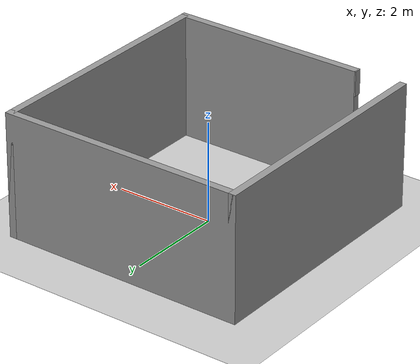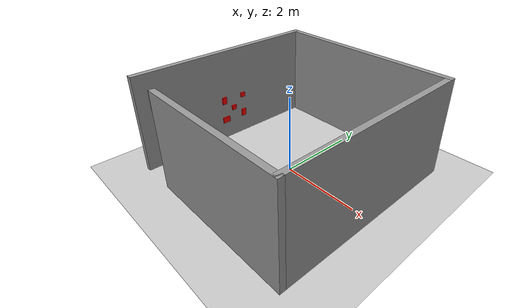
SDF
<sdf version="1.7">
 <world name="default">
  <light name="sun" type="directional">
   <pose>0 0 10 0 -0 0</pose>
   <diffuse>0.8 0.8 0.8 1</diffuse>
   <specular>0.2 0.2 0.2 1</specular>
   <attenuation>
    <range>1000</range>
    <constant>0.9</constant>
    <linear>0.01</linear>
    <quadratic>0.001</quadratic>
   </attenuation>
   <direction>-0.5 0.1 -0.9</direction>
   <spot><inner_angle>0</inner_angle><outer_angle>0</outer_angle><falloff>0</falloff></spot>
  </light>
  <model name="ground_plane">
   <static>1</static>
   <link name="link">
    <collision name="collision">
     <geometry><plane><normal>0 0 1</normal><size>100 100</size></plane></geometry>
     <surface>
      <contact><collide_bitmask>65535</collide_bitmask></contact>
      <friction><ode><mu>100</mu><mu2>50</mu2></ode></friction>
     </surface>
    </collision>
    <visual name="visual">
     <cast_shadows>0</cast_shadows>
     <geometry><plane><normal>0 0 1</normal><size>100 100</size></plane></geometry>
     <material>
      <script><uri>file://media/materials/scripts/gazebo.material</uri><name>Gazebo/Grey</name></script>
     </material>
    </visual>
   </link>
  </model>
  <gravity>0 0 -9.8</gravity>
  <magnetic_field>6e-06 2.3e-05 -4.2e-05</magnetic_field>
  <atmosphere type="adiabatic"/>
  <physics type="ode">
   <max_step_size>0.001</max_step_size>
   <real_time_factor>1</real_time_factor>
   <real_time_update_rate>1000</real_time_update_rate>
  </physics>
  <scene><ambient>0.4 0.4 0.4 1</ambient><background>0.7 0.7 0.7 1</background><shadows>1</shadows></scene>
  <spherical_coordinates>
   <surface_model>EARTH_WGS84</surface_model>
   <latitude_deg>0</latitude_deg>
   <longitude_deg>0</longitude_deg>
   <elevation>0</elevation>
   <heading_deg>0</heading_deg>
  </spherical_coordinates>
  <model name="Arena">
   <link name="Wall_10">
    <collision name="Wall_10_Collision">
     <geometry><box><size>5 0.15 2.5</size></box></geometry>
     <pose>0 0 1.25 0 -0 0</pose>
    </collision>
    <visual name="Wall_10_Visual">
     <pose>0 0 1.25 0 -0 0</pose>
     <geometry><box><size>5 0.15 2.5</size></box></geometry>
     <material>
      <script><uri>file://media/materials/scripts/gazebo.material</uri><name>Gazebo/Grey</name></script>
      <ambient>1 1 1 1</ambient>
     </material>
     <meta><layer>0</layer></meta>
    </visual>
    <pose>0 2.5 0 0 -0 0</pose>
   </link>
   <link name="Wall_11">
    <collision name="Wall_11_Collision">
     <geometry><box><size>5.15 0.15 2.5</size></box></geometry>
     <pose>0 0 1.25 0 -0 0</pose>
    </collision>
    <visual name="Wall_11_Visual">
     <pose>0 0 1.25 0 -0 0</pose>
     <geometry><box><size>5.15 0.15 2.5</size></box></geometry>
     <material>
      <script><uri>file://media/materials/scripts/gazebo.material</uri><name>Gazebo/Grey</name></script>
      <ambient>1 1 1 1</ambient>
     </material>
     <meta><layer>0</layer></meta>
    </visual>
    <pose>2.425 0 0 0 -0 -1.5708</pose>
   </link>
   <link name="Wall_14">
    <pose>0.5 -2.5 0 0 -0 3.14159</pose>
    <visual name="Wall_14_Visual_0">
     <pose>-0.0125 0 1.25 0 -0 0</pose>
     <geometry><box><size>3.975 0.15 2.5</size></box></geometry>
     <material>
      <script><uri>file://media/materials/scripts/gazebo.material</uri><name>Gazebo/Grey</name></script>
      <ambient>1 1 1 1</ambient>
     </material>
     <meta><layer>0</layer></meta>
    </visual>
    <collision name="Wall_14_Collision_0">
     <geometry><box><size>3.975 0.15 2.5</size></box></geometry>
     <pose>-0.0125 0 1.25 0 -0 0</pose>
    </collision>
    <visual name="Wall_14_Visual_1">
     <pose>1.9875 0 2.25 0 -0 0</pose>
     <geometry><box><size>0.025 0.15 0.5</size></box></geometry>
     <material>
      <script><uri>file://media/materials/scripts/gazebo.material</uri><name>Gazebo/Grey</name></script>
      <ambient>1 1 1 1</ambient>
     </material>
     <meta><layer>0</layer></meta>
    </visual>
    <collision name="Wall_14_Collision_1">
     <geometry><box><size>0.025 0.15 0.5</size></box></geometry>
     <pose>1.9875 0 2.25 0 -0 0</pose>
    </collision>
   </link>
   <link name="Wall_8">
    <collision name="Wall_8_Collision">
     <geometry><box><size>5.15 0.15 2.5</size></box></geometry>
     <pose>0 0 1.25 0 -0 0</pose>
    </collision>
    <visual name="Wall_8_Visual">
     <pose>0 0 1.25 0 -0 0</pose>
     <geometry><box><size>5.15 0.15 2.5</size></box></geometry>
     <material>
      <script><uri>file://media/materials/scripts/gazebo.material</uri><name>Gazebo/Grey</name></script>
      <ambient>1 1 1 1</ambient>
     </material>
     <meta><layer>0</layer></meta>
    </visual>
    <pose>-2.425 0 0 0 -0 1.5708</pose>
   </link>
   <static>1</static>
  </model>
  <model name="box_11">
   <link name="link">
    <pose>-0.42 -0.26 1.475 0 -0 0</pose>
    <inertial>
     <mass>0.03</mass>
     <inertia><ixx>0.0005</ixx><ixy>0</ixy><ixz>0</ixz><iyy>0.0005</iyy><iyz>0</iyz><izz>0.0005</izz></inertia>
    </inertial>
    <visual name="visual">
     <geometry><box><size>0.04 0.12 0.18</size></box></geometry>
     <material>
      <ambient>0.7 0 0 1</ambient>
      <diffuse>1 0 0 1</diffuse>
      <specular>0.3 0 0 1</specular>
      <emissive>0.3 0 0 1</emissive>
      <shader type="pixel"/>
      <script><name>ModelPreview_8::link::visual_MATERIAL_</name><uri>__default__</uri></script>
     </material>
    </visual>
    <collision name="collision">
     <geometry><box><size>0.04 0.12 0.18</size></box></geometry>
     <surface>
      <friction>
       <ode><mu>5</mu><mu2>5</mu2><fdir1>0 0 0</fdir1><slip1>0</slip1><slip2>0</slip2></ode>
       <torsional>
        <coefficient>1</coefficient>
        <patch_radius>0</patch_radius>
        <surface_radius>0</surface_radius>
        <use_patch_radius>1</use_patch_radius>
        <ode><slip>0</slip></ode>
       </torsional>
      </friction>
      <bounce><restitution_coefficient>0</restitution_coefficient><threshold>1e+06</threshold></bounce>
      <contact>
       <collide_without_contact>0</collide_without_contact>
       <collide_without_contact_bitmask>1</collide_without_contact_bitmask>
       <collide_bitmask>1</collide_bitmask>
       <ode>
        <soft_cfm>0</soft_cfm>
        <soft_erp>0.2</soft_erp>
        <kp>1e+13</kp>
        <kd>1</kd>
        <max_vel>0.01</max_vel>
        <min_depth>0</min_depth>
       </ode>
       <bullet>
        <split_impulse>1</split_impulse>
        <split_impulse_penetration_threshold>-0.01</split_impulse_penetration_threshold>
        <soft_cfm>0</soft_cfm>
        <soft_erp>0.2</soft_erp>
        <kp>1e+13</kp>
        <kd>1</kd>
       </bullet>
      </contact>
     </surface>
    </collision>
   </link>
   <static>0</static>
   <pose>-1.35405 -0.327352 -0.005028 1.2e-05 1e-06 0.001503</pose>
  </model>
  <model name="box_12">
   <link name="link">
    <pose>-0.42 0 1.445 0 -0 0</pose>
    <inertial>
     <mass>0.03</mass>
     <inertia><ixx>0.0005</ixx><ixy>0</ixy><ixz>0</ixz><iyy>0.0005</iyy><iyz>0</iyz><izz>0.0005</izz></inertia>
    </inertial>
    <visual name="visual">
     <geometry><box><size>0.04 0.12 0.12</size></box></geometry>
     <material>
      <ambient>0.7 0 0 1</ambient>
      <diffuse>1 0 0 1</diffuse>
      <specular>0.3 0 0 1</specular>
      <emissive>0.3 0 0 1</emissive>
      <shader type="pixel"/>
      <script><name>ModelPreview_11::link::visual_MATERIAL_</name><uri>__default__</uri></script>
     </material>
    </visual>
    <collision name="collision">
     <geometry><box><size>0.04 0.12 0.12</size></box></geometry>
     <surface>
      <friction>
       <ode><mu>5</mu><mu2>5</mu2><fdir1>0 0 0</fdir1><slip1>0</slip1><slip2>0</slip2></ode>
       <torsional>
        <coefficient>1</coefficient>
        <patch_radius>0</patch_radius>
        <surface_radius>0</surface_radius>
        <use_patch_radius>1</use_patch_radius>
        <ode><slip>0</slip></ode>
       </torsional>
      </friction>
      <bounce><restitution_coefficient>0</restitution_coefficient><threshold>1e+06</threshold></bounce>
      <contact>
       <collide_without_contact>0</collide_without_contact>
       <collide_without_contact_bitmask>1</collide_without_contact_bitmask>
       <collide_bitmask>1</collide_bitmask>
       <ode>
        <soft_cfm>0</soft_cfm>
        <soft_erp>0.2</soft_erp>
        <kp>1e+13</kp>
        <kd>1</kd>
        <max_vel>0.01</max_vel>
        <min_depth>0</min_depth>
       </ode>
       <bullet>
        <split_impulse>1</split_impulse>
        <split_impulse_penetration_threshold>-0.01</split_impulse_penetration_threshold>
        <soft_cfm>0</soft_cfm>
        <soft_erp>0.2</soft_erp>
        <kp>1e+13</kp>
        <kd>1</kd>
       </bullet>
      </contact>
     </surface>
    </collision>
   </link>
   <static>0</static>
   <pose>-1.38719 -0.294132 -0.265006 1.5e-05 -0 0.001155</pose>
  </model>
  <model name="box_41">
   <link name="link">
    <pose>-0.42 -0.26 0.695 0 -0 0</pose>
    <inertial>
     <mass>0.03</mass>
     <inertia><ixx>0.0005</ixx><ixy>0</ixy><ixz>0</ixz><iyy>0.0005</iyy><iyz>0</iyz><izz>0.0005</izz></inertia>
    </inertial>
    <visual name="visual">
     <geometry><box><size>0.04 0.12 0.18</size></box></geometry>
     <material>
      <ambient>0.7 0 0 1</ambient>
      <diffuse>1 0 0 1</diffuse>
      <specular>0.3 0 0 1</specular>
      <emissive>0.3 0 0 1</emissive>
      <shader type="pixel"/>
      <script><name>ModelPreview_35::link::visual_MATERIAL_</name><uri>__default__</uri></script>
     </material>
    </visual>
    <collision name="collision">
     <geometry><box><size>0.04 0.12 0.18</size></box></geometry>
     <surface>
      <friction>
       <ode><mu>5</mu><mu2>5</mu2><fdir1>0 0 0</fdir1><slip1>0</slip1><slip2>0</slip2></ode>
       <torsional>
        <coefficient>1</coefficient>
        <patch_radius>0</patch_radius>
        <surface_radius>0</surface_radius>
        <use_patch_radius>1</use_patch_radius>
        <ode><slip>0</slip></ode>
       </torsional>
      </friction>
      <bounce><restitution_coefficient>0</restitution_coefficient><threshold>1e+06</threshold></bounce>
      <contact>
       <collide_without_contact>0</collide_without_contact>
       <collide_without_contact_bitmask>1</collide_without_contact_bitmask>
       <collide_bitmask>1</collide_bitmask>
       <ode>
        <soft_cfm>0</soft_cfm>
        <soft_erp>0.2</soft_erp>
        <kp>1e+13</kp>
        <kd>1</kd>
        <max_vel>0.01</max_vel>
        <min_depth>0</min_depth>
       </ode>
       <bullet>
        <split_impulse>1</split_impulse>
        <split_impulse_penetration_threshold>-0.01</split_impulse_penetration_threshold>
        <soft_cfm>0</soft_cfm>
        <soft_erp>0.2</soft_erp>
        <kp>1e+13</kp>
        <kd>1</kd>
       </bullet>
      </contact>
     </surface>
    </collision>
   </link>
   <static>0</static>
   <pose>-1.37292 0.251087 0.255002 1.5e-05 0 -0.000748</pose>
  </model>
  <model name="box_23">
   <link name="link">
    <pose>-0.415 0.26 1.225 0 -0 0</pose>
    <inertial>
     <mass>0.03</mass>
     <inertia><ixx>0.0005</ixx><ixy>0</ixy><ixz>0</ixz><iyy>0.0005</iyy><iyz>0</iyz><izz>0.0005</izz></inertia>
    </inertial>
    <visual name="visual">
     <geometry><box><size>0.03 0.2 0.15</size></box></geometry>
     <material>
      <ambient>0.7 0 0 1</ambient>
      <diffuse>1 0 0 1</diffuse>
      <specular>0.3 0 0 1</specular>
      <emissive>0.3 0 0 1</emissive>
      <shader type="pixel"/>
      <script><name>ModelPreview_23::link::visual_MATERIAL_</name><uri>__default__</uri></script>
     </material>
    </visual>
    <collision name="collision">
     <geometry><box><size>0.03 0.2 0.15</size></box></geometry>
     <surface>
      <friction>
       <ode><mu>5</mu><mu2>5</mu2><fdir1>0 0 0</fdir1><slip1>0</slip1><slip2>0</slip2></ode>
       <torsional>
        <coefficient>1</coefficient>
        <patch_radius>0</patch_radius>
        <surface_radius>0</surface_radius>
        <use_patch_radius>1</use_patch_radius>
        <ode><slip>0</slip></ode>
       </torsional>
      </friction>
      <bounce><restitution_coefficient>0</restitution_coefficient><threshold>1e+06</threshold></bounce>
      <contact>
       <collide_without_contact>0</collide_without_contact>
       <collide_without_contact_bitmask>1</collide_without_contact_bitmask>
       <collide_bitmask>1</collide_bitmask>
       <ode>
        <soft_cfm>0</soft_cfm>
        <soft_erp>0.2</soft_erp>
        <kp>1e+13</kp>
        <kd>1</kd>
        <max_vel>0.01</max_vel>
        <min_depth>0</min_depth>
       </ode>
       <bullet>
        <split_impulse>1</split_impulse>
        <split_impulse_penetration_threshold>-0.01</split_impulse_penetration_threshold>
        <soft_cfm>0</soft_cfm>
        <soft_erp>0.2</soft_erp>
        <kp>1e+13</kp>
        <kd>1</kd>
       </bullet>
      </contact>
     </surface>
    </collision>
   </link>
   <static>0</static>
   <pose>-1.36274 -0.826355 -0.298558 0.000143 7.3e-05 0.006113</pose>
  </model>
  <model name="box_42">
   <link name="link">
    <pose>-0.42 0 0.665 0 -0 0</pose>
    <inertial>
     <mass>0.03</mass>
     <inertia><ixx>0.0005</ixx><ixy>0</ixy><ixz>0</ixz><iyy>0.0005</iyy><iyz>0</iyz><izz>0.0005</izz></inertia>
    </inertial>
    <visual name="visual">
     <geometry><box><size>0.04 0.12 0.12</size></box></geometry>
     <material>
      <ambient>0.7 0 0 1</ambient>
      <diffuse>1 0 0 1</diffuse>
      <specular>0.3 0 0 1</specular>
      <emissive>0.3 0 0 1</emissive>
      <shader type="pixel"/>
      <script><name>ModelPreview_38::link::visual_MATERIAL_</name><uri>__default__</uri></script>
     </material>
    </visual>
    <collision name="collision">
     <geometry><box><size>0.04 0.12 0.12</size></box></geometry>
     <surface>
      <friction>
       <ode><mu>5</mu><mu2>5</mu2><fdir1>0 0 0</fdir1><slip1>0</slip1><slip2>0</slip2></ode>
       <torsional>
        <coefficient>1</coefficient>
        <patch_radius>0</patch_radius>
        <surface_radius>0</surface_radius>
        <use_patch_radius>1</use_patch_radius>
        <ode><slip>0</slip></ode>
       </torsional>
      </friction>
      <bounce><restitution_coefficient>0</restitution_coefficient><threshold>1e+06</threshold></bounce>
      <contact>
       <collide_without_contact>0</collide_without_contact>
       <collide_without_contact_bitmask>1</collide_without_contact_bitmask>
       <collide_bitmask>1</collide_bitmask>
       <ode>
        <soft_cfm>0</soft_cfm>
        <soft_erp>0.2</soft_erp>
        <kp>1e+13</kp>
        <kd>1</kd>
        <max_vel>0.01</max_vel>
        <min_depth>0</min_depth>
       </ode>
       <bullet>
        <split_impulse>1</split_impulse>
        <split_impulse_penetration_threshold>-0.01</split_impulse_penetration_threshold>
        <soft_cfm>0</soft_cfm>
        <soft_erp>0.2</soft_erp>
        <kp>1e+13</kp>
        <kd>1</kd>
       </bullet>
      </contact>
     </surface>
    </collision>
   </link>
   <static>0</static>
   <pose>-1.4036 0.013473 0.775 0 -0 0.000353</pose>
  </model>
 </world>
</sdf>
